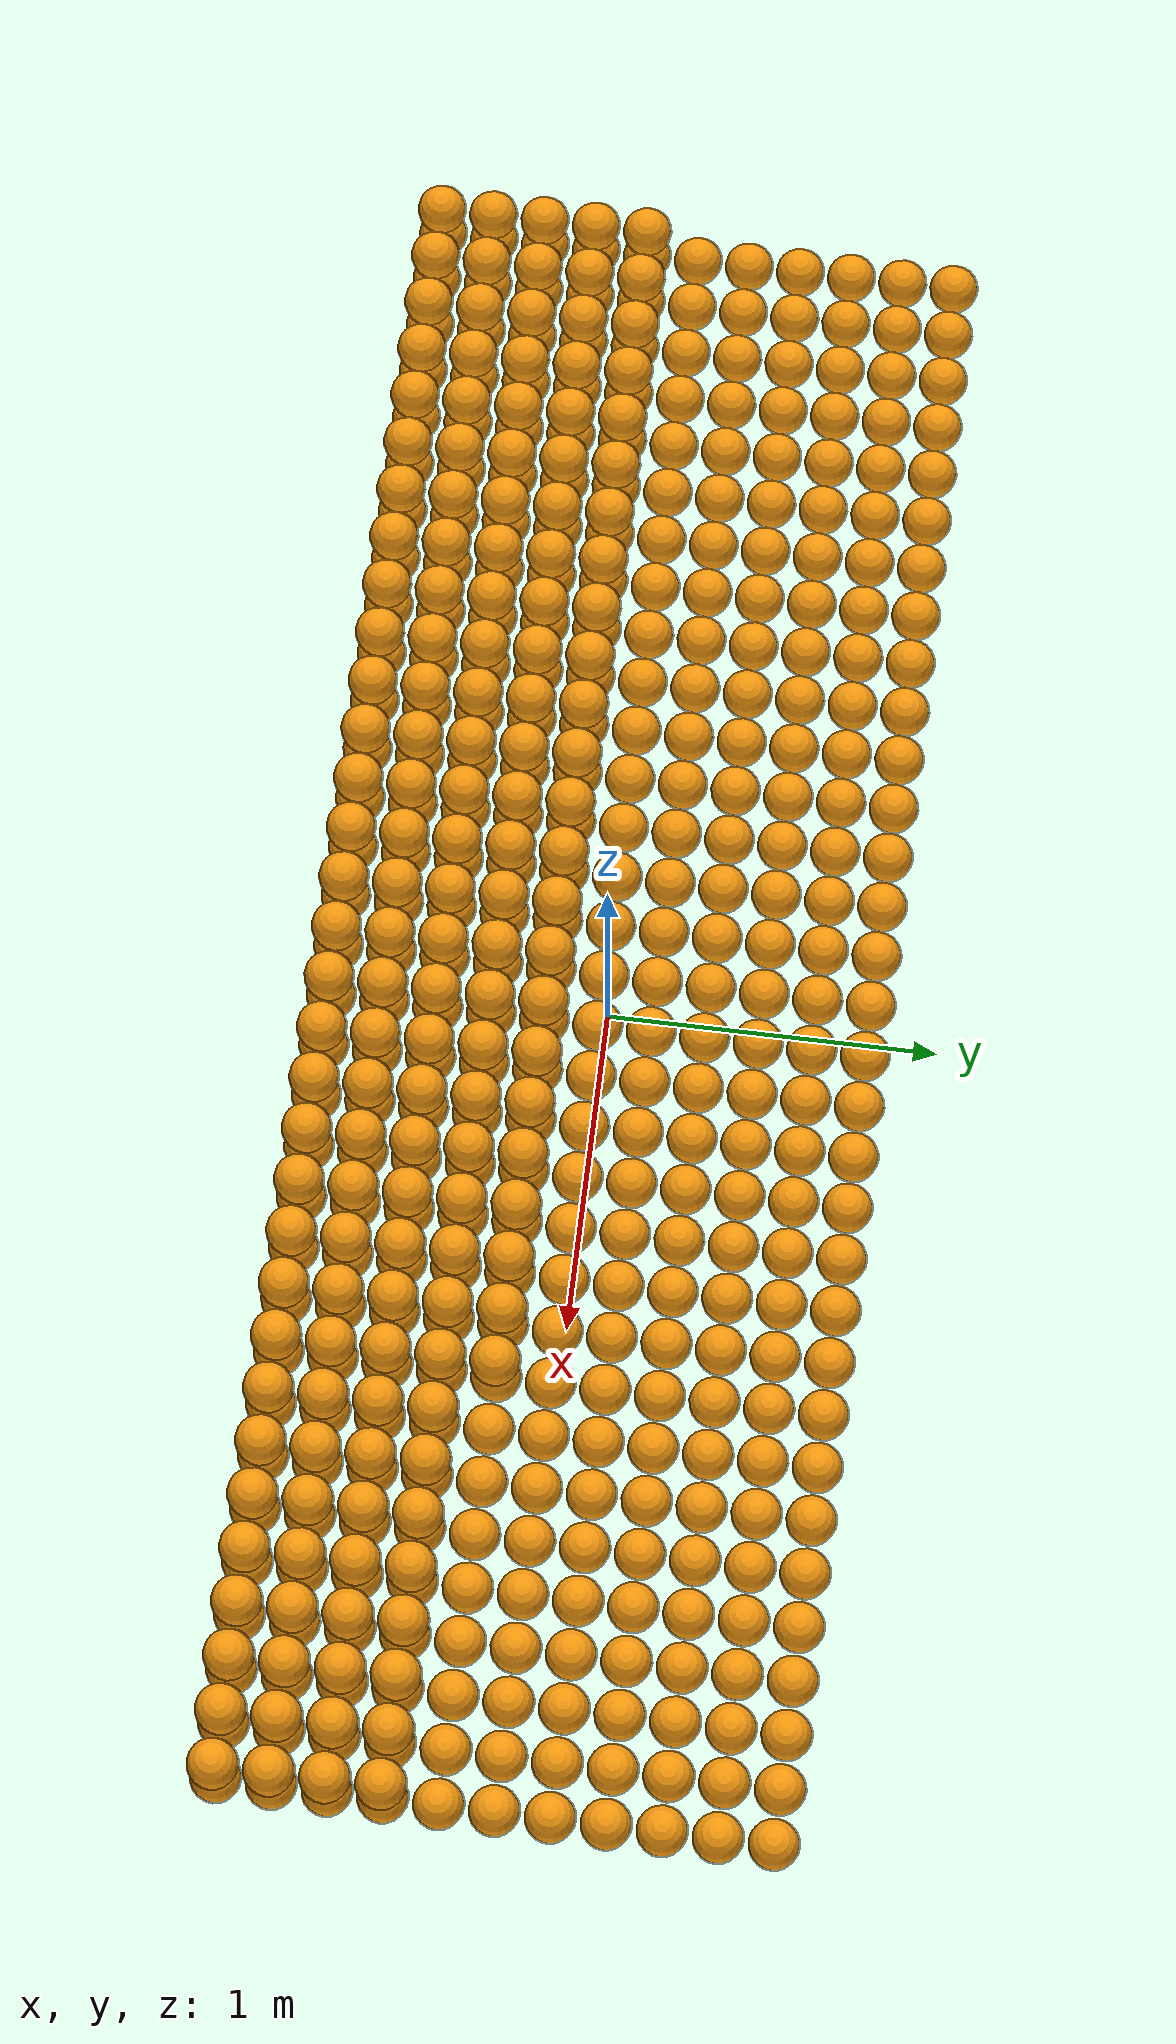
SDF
<?xml version="1.0" ?>
<sdf version="1.11">
  <world name="mars">
    <physics name="250hz" type="ignored">
      <max_step_size>0.004</max_step_size><real_time_factor>0</real_time_factor>
    </physics>
    <plugin filename="gz-sim-physics-system" name="gz::sim::systems::Physics"/>
    <plugin filename="gz-sim-scene-broadcaster-system" name="gz::sim::systems::SceneBroadcaster"/>
    <gravity>0 0 -9.8</gravity>
    <light type="directional" name="sun"><pose>0 0 10 0 0 0</pose>
      <diffuse>0.8 0.8 0.8 1</diffuse><direction>-0.5 0.1 -0.9</direction></light>
    <model name="ground_plane"><static>true</static><link name="link">
      <collision name="collision"><geometry><plane><normal>0 0 1</normal></plane></geometry>
      <surface><friction><ode><mu>0.9</mu><mu2>0.9</mu2></ode></friction></surface></collision>
    </link></model>
    <include><uri>model://fuel</uri><name>fuel_0</name><pose>-2.5340 -0.8340 0.0750 0 0 0</pose></include>
    <include><uri>model://fuel</uri><name>fuel_1</name><pose>-2.3720 -0.8340 0.0750 0 0 0</pose></include>
    <include><uri>model://fuel</uri><name>fuel_2</name><pose>-2.2100 -0.8340 0.0750 0 0 0</pose></include>
    <include><uri>model://fuel</uri><name>fuel_3</name><pose>-2.0480 -0.8340 0.0750 0 0 0</pose></include>
    <include><uri>model://fuel</uri><name>fuel_4</name><pose>-1.8860 -0.8340 0.0750 0 0 0</pose></include>
    <include><uri>model://fuel</uri><name>fuel_5</name><pose>-1.7240 -0.8340 0.0750 0 0 0</pose></include>
    <include><uri>model://fuel</uri><name>fuel_6</name><pose>-1.5620 -0.8340 0.0750 0 0 0</pose></include>
    <include><uri>model://fuel</uri><name>fuel_7</name><pose>-1.4000 -0.8340 0.0750 0 0 0</pose></include>
    <include><uri>model://fuel</uri><name>fuel_8</name><pose>-1.2380 -0.8340 0.0750 0 0 0</pose></include>
    <include><uri>model://fuel</uri><name>fuel_9</name><pose>-1.0760 -0.8340 0.0750 0 0 0</pose></include>
    <include><uri>model://fuel</uri><name>fuel_10</name><pose>-0.9140 -0.8340 0.0750 0 0 0</pose></include>
    <include><uri>model://fuel</uri><name>fuel_11</name><pose>-0.7520 -0.8340 0.0750 0 0 0</pose></include>
    <include><uri>model://fuel</uri><name>fuel_12</name><pose>-0.5900 -0.8340 0.0750 0 0 0</pose></include>
    <include><uri>model://fuel</uri><name>fuel_13</name><pose>-0.4280 -0.8340 0.0750 0 0 0</pose></include>
    <include><uri>model://fuel</uri><name>fuel_14</name><pose>-0.2660 -0.8340 0.0750 0 0 0</pose></include>
    <include><uri>model://fuel</uri><name>fuel_15</name><pose>-0.1040 -0.8340 0.0750 0 0 0</pose></include>
    <include><uri>model://fuel</uri><name>fuel_16</name><pose>0.0580 -0.8340 0.0750 0 0 0</pose></include>
    <include><uri>model://fuel</uri><name>fuel_17</name><pose>0.2200 -0.8340 0.0750 0 0 0</pose></include>
    <include><uri>model://fuel</uri><name>fuel_18</name><pose>0.3820 -0.8340 0.0750 0 0 0</pose></include>
    <include><uri>model://fuel</uri><name>fuel_19</name><pose>0.5440 -0.8340 0.0750 0 0 0</pose></include>
    <include><uri>model://fuel</uri><name>fuel_20</name><pose>0.7060 -0.8340 0.0750 0 0 0</pose></include>
    <include><uri>model://fuel</uri><name>fuel_21</name><pose>0.8680 -0.8340 0.0750 0 0 0</pose></include>
    <include><uri>model://fuel</uri><name>fuel_22</name><pose>1.0300 -0.8340 0.0750 0 0 0</pose></include>
    <include><uri>model://fuel</uri><name>fuel_23</name><pose>1.1920 -0.8340 0.0750 0 0 0</pose></include>
    <include><uri>model://fuel</uri><name>fuel_24</name><pose>1.3540 -0.8340 0.0750 0 0 0</pose></include>
    <include><uri>model://fuel</uri><name>fuel_25</name><pose>1.5160 -0.8340 0.0750 0 0 0</pose></include>
    <include><uri>model://fuel</uri><name>fuel_26</name><pose>1.6780 -0.8340 0.0750 0 0 0</pose></include>
    <include><uri>model://fuel</uri><name>fuel_27</name><pose>1.8400 -0.8340 0.0750 0 0 0</pose></include>
    <include><uri>model://fuel</uri><name>fuel_28</name><pose>2.0020 -0.8340 0.0750 0 0 0</pose></include>
    <include><uri>model://fuel</uri><name>fuel_29</name><pose>2.1640 -0.8340 0.0750 0 0 0</pose></include>
    <include><uri>model://fuel</uri><name>fuel_30</name><pose>2.3260 -0.8340 0.0750 0 0 0</pose></include>
    <include><uri>model://fuel</uri><name>fuel_31</name><pose>2.4880 -0.8340 0.0750 0 0 0</pose></include>
    <include><uri>model://fuel</uri><name>fuel_32</name><pose>-2.5340 -0.6720 0.0750 0 0 0</pose></include>
    <include><uri>model://fuel</uri><name>fuel_33</name><pose>-2.3720 -0.6720 0.0750 0 0 0</pose></include>
    <include><uri>model://fuel</uri><name>fuel_34</name><pose>-2.2100 -0.6720 0.0750 0 0 0</pose></include>
    <include><uri>model://fuel</uri><name>fuel_35</name><pose>-2.0480 -0.6720 0.0750 0 0 0</pose></include>
    <include><uri>model://fuel</uri><name>fuel_36</name><pose>-1.8860 -0.6720 0.0750 0 0 0</pose></include>
    <include><uri>model://fuel</uri><name>fuel_37</name><pose>-1.7240 -0.6720 0.0750 0 0 0</pose></include>
    <include><uri>model://fuel</uri><name>fuel_38</name><pose>-1.5620 -0.6720 0.0750 0 0 0</pose></include>
    <include><uri>model://fuel</uri><name>fuel_39</name><pose>-1.4000 -0.6720 0.0750 0 0 0</pose></include>
    <include><uri>model://fuel</uri><name>fuel_40</name><pose>-1.2380 -0.6720 0.0750 0 0 0</pose></include>
    <include><uri>model://fuel</uri><name>fuel_41</name><pose>-1.0760 -0.6720 0.0750 0 0 0</pose></include>
    <include><uri>model://fuel</uri><name>fuel_42</name><pose>-0.9140 -0.6720 0.0750 0 0 0</pose></include>
    <include><uri>model://fuel</uri><name>fuel_43</name><pose>-0.7520 -0.6720 0.0750 0 0 0</pose></include>
    <include><uri>model://fuel</uri><name>fuel_44</name><pose>-0.5900 -0.6720 0.0750 0 0 0</pose></include>
    <include><uri>model://fuel</uri><name>fuel_45</name><pose>-0.4280 -0.6720 0.0750 0 0 0</pose></include>
    <include><uri>model://fuel</uri><name>fuel_46</name><pose>-0.2660 -0.6720 0.0750 0 0 0</pose></include>
    <include><uri>model://fuel</uri><name>fuel_47</name><pose>-0.1040 -0.6720 0.0750 0 0 0</pose></include>
    <include><uri>model://fuel</uri><name>fuel_48</name><pose>0.0580 -0.6720 0.0750 0 0 0</pose></include>
    <include><uri>model://fuel</uri><name>fuel_49</name><pose>0.2200 -0.6720 0.0750 0 0 0</pose></include>
    <include><uri>model://fuel</uri><name>fuel_50</name><pose>0.3820 -0.6720 0.0750 0 0 0</pose></include>
    <include><uri>model://fuel</uri><name>fuel_51</name><pose>0.5440 -0.6720 0.0750 0 0 0</pose></include>
    <include><uri>model://fuel</uri><name>fuel_52</name><pose>0.7060 -0.6720 0.0750 0 0 0</pose></include>
    <include><uri>model://fuel</uri><name>fuel_53</name><pose>0.8680 -0.6720 0.0750 0 0 0</pose></include>
    <include><uri>model://fuel</uri><name>fuel_54</name><pose>1.0300 -0.6720 0.0750 0 0 0</pose></include>
    <include><uri>model://fuel</uri><name>fuel_55</name><pose>1.1920 -0.6720 0.0750 0 0 0</pose></include>
    <include><uri>model://fuel</uri><name>fuel_56</name><pose>1.3540 -0.6720 0.0750 0 0 0</pose></include>
    <include><uri>model://fuel</uri><name>fuel_57</name><pose>1.5160 -0.6720 0.0750 0 0 0</pose></include>
    <include><uri>model://fuel</uri><name>fuel_58</name><pose>1.6780 -0.6720 0.0750 0 0 0</pose></include>
    <include><uri>model://fuel</uri><name>fuel_59</name><pose>1.8400 -0.6720 0.0750 0 0 0</pose></include>
    <include><uri>model://fuel</uri><name>fuel_60</name><pose>2.0020 -0.6720 0.0750 0 0 0</pose></include>
    <include><uri>model://fuel</uri><name>fuel_61</name><pose>2.1640 -0.6720 0.0750 0 0 0</pose></include>
    <include><uri>model://fuel</uri><name>fuel_62</name><pose>2.3260 -0.6720 0.0750 0 0 0</pose></include>
    <include><uri>model://fuel</uri><name>fuel_63</name><pose>2.4880 -0.6720 0.0750 0 0 0</pose></include>
    <include><uri>model://fuel</uri><name>fuel_64</name><pose>-2.5340 -0.5100 0.0750 0 0 0</pose></include>
    <include><uri>model://fuel</uri><name>fuel_65</name><pose>-2.3720 -0.5100 0.0750 0 0 0</pose></include>
    <include><uri>model://fuel</uri><name>fuel_66</name><pose>-2.2100 -0.5100 0.0750 0 0 0</pose></include>
    <include><uri>model://fuel</uri><name>fuel_67</name><pose>-2.0480 -0.5100 0.0750 0 0 0</pose></include>
    <include><uri>model://fuel</uri><name>fuel_68</name><pose>-1.8860 -0.5100 0.0750 0 0 0</pose></include>
    <include><uri>model://fuel</uri><name>fuel_69</name><pose>-1.7240 -0.5100 0.0750 0 0 0</pose></include>
    <include><uri>model://fuel</uri><name>fuel_70</name><pose>-1.5620 -0.5100 0.0750 0 0 0</pose></include>
    <include><uri>model://fuel</uri><name>fuel_71</name><pose>-1.4000 -0.5100 0.0750 0 0 0</pose></include>
    <include><uri>model://fuel</uri><name>fuel_72</name><pose>-1.2380 -0.5100 0.0750 0 0 0</pose></include>
    <include><uri>model://fuel</uri><name>fuel_73</name><pose>-1.0760 -0.5100 0.0750 0 0 0</pose></include>
    <include><uri>model://fuel</uri><name>fuel_74</name><pose>-0.9140 -0.5100 0.0750 0 0 0</pose></include>
    <include><uri>model://fuel</uri><name>fuel_75</name><pose>-0.7520 -0.5100 0.0750 0 0 0</pose></include>
    <include><uri>model://fuel</uri><name>fuel_76</name><pose>-0.5900 -0.5100 0.0750 0 0 0</pose></include>
    <include><uri>model://fuel</uri><name>fuel_77</name><pose>-0.4280 -0.5100 0.0750 0 0 0</pose></include>
    <include><uri>model://fuel</uri><name>fuel_78</name><pose>-0.2660 -0.5100 0.0750 0 0 0</pose></include>
    <include><uri>model://fuel</uri><name>fuel_79</name><pose>-0.1040 -0.5100 0.0750 0 0 0</pose></include>
    <include><uri>model://fuel</uri><name>fuel_80</name><pose>0.0580 -0.5100 0.0750 0 0 0</pose></include>
    <include><uri>model://fuel</uri><name>fuel_81</name><pose>0.2200 -0.5100 0.0750 0 0 0</pose></include>
    <include><uri>model://fuel</uri><name>fuel_82</name><pose>0.3820 -0.5100 0.0750 0 0 0</pose></include>
    <include><uri>model://fuel</uri><name>fuel_83</name><pose>0.5440 -0.5100 0.0750 0 0 0</pose></include>
    <include><uri>model://fuel</uri><name>fuel_84</name><pose>0.7060 -0.5100 0.0750 0 0 0</pose></include>
    <include><uri>model://fuel</uri><name>fuel_85</name><pose>0.8680 -0.5100 0.0750 0 0 0</pose></include>
    <include><uri>model://fuel</uri><name>fuel_86</name><pose>1.0300 -0.5100 0.0750 0 0 0</pose></include>
    <include><uri>model://fuel</uri><name>fuel_87</name><pose>1.1920 -0.5100 0.0750 0 0 0</pose></include>
    <include><uri>model://fuel</uri><name>fuel_88</name><pose>1.3540 -0.5100 0.0750 0 0 0</pose></include>
    <include><uri>model://fuel</uri><name>fuel_89</name><pose>1.5160 -0.5100 0.0750 0 0 0</pose></include>
    <include><uri>model://fuel</uri><name>fuel_90</name><pose>1.6780 -0.5100 0.0750 0 0 0</pose></include>
    <include><uri>model://fuel</uri><name>fuel_91</name><pose>1.8400 -0.5100 0.0750 0 0 0</pose></include>
    <include><uri>model://fuel</uri><name>fuel_92</name><pose>2.0020 -0.5100 0.0750 0 0 0</pose></include>
    <include><uri>model://fuel</uri><name>fuel_93</name><pose>2.1640 -0.5100 0.0750 0 0 0</pose></include>
    <include><uri>model://fuel</uri><name>fuel_94</name><pose>2.3260 -0.5100 0.0750 0 0 0</pose></include>
    <include><uri>model://fuel</uri><name>fuel_95</name><pose>2.4880 -0.5100 0.0750 0 0 0</pose></include>
    <include><uri>model://fuel</uri><name>fuel_96</name><pose>-2.5340 -0.3480 0.0750 0 0 0</pose></include>
    <include><uri>model://fuel</uri><name>fuel_97</name><pose>-2.3720 -0.3480 0.0750 0 0 0</pose></include>
    <include><uri>model://fuel</uri><name>fuel_98</name><pose>-2.2100 -0.3480 0.0750 0 0 0</pose></include>
    <include><uri>model://fuel</uri><name>fuel_99</name><pose>-2.0480 -0.3480 0.0750 0 0 0</pose></include>
    <include><uri>model://fuel</uri><name>fuel_100</name><pose>-1.8860 -0.3480 0.0750 0 0 0</pose></include>
    <include><uri>model://fuel</uri><name>fuel_101</name><pose>-1.7240 -0.3480 0.0750 0 0 0</pose></include>
    <include><uri>model://fuel</uri><name>fuel_102</name><pose>-1.5620 -0.3480 0.0750 0 0 0</pose></include>
    <include><uri>model://fuel</uri><name>fuel_103</name><pose>-1.4000 -0.3480 0.0750 0 0 0</pose></include>
    <include><uri>model://fuel</uri><name>fuel_104</name><pose>-1.2380 -0.3480 0.0750 0 0 0</pose></include>
    <include><uri>model://fuel</uri><name>fuel_105</name><pose>-1.0760 -0.3480 0.0750 0 0 0</pose></include>
    <include><uri>model://fuel</uri><name>fuel_106</name><pose>-0.9140 -0.3480 0.0750 0 0 0</pose></include>
    <include><uri>model://fuel</uri><name>fuel_107</name><pose>-0.7520 -0.3480 0.0750 0 0 0</pose></include>
    <include><uri>model://fuel</uri><name>fuel_108</name><pose>-0.5900 -0.3480 0.0750 0 0 0</pose></include>
    <include><uri>model://fuel</uri><name>fuel_109</name><pose>-0.4280 -0.3480 0.0750 0 0 0</pose></include>
    <include><uri>model://fuel</uri><name>fuel_110</name><pose>-0.2660 -0.3480 0.0750 0 0 0</pose></include>
    <include><uri>model://fuel</uri><name>fuel_111</name><pose>-0.1040 -0.3480 0.0750 0 0 0</pose></include>
    <include><uri>model://fuel</uri><name>fuel_112</name><pose>0.0580 -0.3480 0.0750 0 0 0</pose></include>
    <include><uri>model://fuel</uri><name>fuel_113</name><pose>0.2200 -0.3480 0.0750 0 0 0</pose></include>
    <include><uri>model://fuel</uri><name>fuel_114</name><pose>0.3820 -0.3480 0.0750 0 0 0</pose></include>
    <include><uri>model://fuel</uri><name>fuel_115</name><pose>0.5440 -0.3480 0.0750 0 0 0</pose></include>
    <include><uri>model://fuel</uri><name>fuel_116</name><pose>0.7060 -0.3480 0.0750 0 0 0</pose></include>
    <include><uri>model://fuel</uri><name>fuel_117</name><pose>0.8680 -0.3480 0.0750 0 0 0</pose></include>
    <include><uri>model://fuel</uri><name>fuel_118</name><pose>1.0300 -0.3480 0.0750 0 0 0</pose></include>
    <include><uri>model://fuel</uri><name>fuel_119</name><pose>1.1920 -0.3480 0.0750 0 0 0</pose></include>
    <include><uri>model://fuel</uri><name>fuel_120</name><pose>1.3540 -0.3480 0.0750 0 0 0</pose></include>
    <include><uri>model://fuel</uri><name>fuel_121</name><pose>1.5160 -0.3480 0.0750 0 0 0</pose></include>
    <include><uri>model://fuel</uri><name>fuel_122</name><pose>1.6780 -0.3480 0.0750 0 0 0</pose></include>
    <include><uri>model://fuel</uri><name>fuel_123</name><pose>1.8400 -0.3480 0.0750 0 0 0</pose></include>
    <include><uri>model://fuel</uri><name>fuel_124</name><pose>2.0020 -0.3480 0.0750 0 0 0</pose></include>
    <include><uri>model://fuel</uri><name>fuel_125</name><pose>2.1640 -0.3480 0.0750 0 0 0</pose></include>
    <include><uri>model://fuel</uri><name>fuel_126</name><pose>2.3260 -0.3480 0.0750 0 0 0</pose></include>
    <include><uri>model://fuel</uri><name>fuel_127</name><pose>2.4880 -0.3480 0.0750 0 0 0</pose></include>
    <include><uri>model://fuel</uri><name>fuel_128</name><pose>-2.5340 -0.1860 0.0750 0 0 0</pose></include>
    <include><uri>model://fuel</uri><name>fuel_129</name><pose>-2.3720 -0.1860 0.0750 0 0 0</pose></include>
    <include><uri>model://fuel</uri><name>fuel_130</name><pose>-2.2100 -0.1860 0.0750 0 0 0</pose></include>
    <include><uri>model://fuel</uri><name>fuel_131</name><pose>-2.0480 -0.1860 0.0750 0 0 0</pose></include>
    <include><uri>model://fuel</uri><name>fuel_132</name><pose>-1.8860 -0.1860 0.0750 0 0 0</pose></include>
    <include><uri>model://fuel</uri><name>fuel_133</name><pose>-1.7240 -0.1860 0.0750 0 0 0</pose></include>
    <include><uri>model://fuel</uri><name>fuel_134</name><pose>-1.5620 -0.1860 0.0750 0 0 0</pose></include>
    <include><uri>model://fuel</uri><name>fuel_135</name><pose>-1.4000 -0.1860 0.0750 0 0 0</pose></include>
    <include><uri>model://fuel</uri><name>fuel_136</name><pose>-1.2380 -0.1860 0.0750 0 0 0</pose></include>
    <include><uri>model://fuel</uri><name>fuel_137</name><pose>-1.0760 -0.1860 0.0750 0 0 0</pose></include>
    <include><uri>model://fuel</uri><name>fuel_138</name><pose>-0.9140 -0.1860 0.0750 0 0 0</pose></include>
    <include><uri>model://fuel</uri><name>fuel_139</name><pose>-0.7520 -0.1860 0.0750 0 0 0</pose></include>
    <include><uri>model://fuel</uri><name>fuel_140</name><pose>-0.5900 -0.1860 0.0750 0 0 0</pose></include>
    <include><uri>model://fuel</uri><name>fuel_141</name><pose>-0.4280 -0.1860 0.0750 0 0 0</pose></include>
    <include><uri>model://fuel</uri><name>fuel_142</name><pose>-0.2660 -0.1860 0.0750 0 0 0</pose></include>
    <include><uri>model://fuel</uri><name>fuel_143</name><pose>-0.1040 -0.1860 0.0750 0 0 0</pose></include>
    <include><uri>model://fuel</uri><name>fuel_144</name><pose>0.0580 -0.1860 0.0750 0 0 0</pose></include>
    <include><uri>model://fuel</uri><name>fuel_145</name><pose>0.2200 -0.1860 0.0750 0 0 0</pose></include>
    <include><uri>model://fuel</uri><name>fuel_146</name><pose>0.3820 -0.1860 0.0750 0 0 0</pose></include>
    <include><uri>model://fuel</uri><name>fuel_147</name><pose>0.5440 -0.1860 0.0750 0 0 0</pose></include>
    <include><uri>model://fuel</uri><name>fuel_148</name><pose>0.7060 -0.1860 0.0750 0 0 0</pose></include>
    <include><uri>model://fuel</uri><name>fuel_149</name><pose>0.8680 -0.1860 0.0750 0 0 0</pose></include>
    <include><uri>model://fuel</uri><name>fuel_150</name><pose>1.0300 -0.1860 0.0750 0 0 0</pose></include>
    <include><uri>model://fuel</uri><name>fuel_151</name><pose>1.1920 -0.1860 0.0750 0 0 0</pose></include>
    <include><uri>model://fuel</uri><name>fuel_152</name><pose>1.3540 -0.1860 0.0750 0 0 0</pose></include>
    <include><uri>model://fuel</uri><name>fuel_153</name><pose>1.5160 -0.1860 0.0750 0 0 0</pose></include>
    <include><uri>model://fuel</uri><name>fuel_154</name><pose>1.6780 -0.1860 0.0750 0 0 0</pose></include>
    <include><uri>model://fuel</uri><name>fuel_155</name><pose>1.8400 -0.1860 0.0750 0 0 0</pose></include>
    <include><uri>model://fuel</uri><name>fuel_156</name><pose>2.0020 -0.1860 0.0750 0 0 0</pose></include>
    <include><uri>model://fuel</uri><name>fuel_157</name><pose>2.1640 -0.1860 0.0750 0 0 0</pose></include>
    <include><uri>model://fuel</uri><name>fuel_158</name><pose>2.3260 -0.1860 0.0750 0 0 0</pose></include>
    <include><uri>model://fuel</uri><name>fuel_159</name><pose>2.4880 -0.1860 0.0750 0 0 0</pose></include>
    <include><uri>model://fuel</uri><name>fuel_160</name><pose>-2.5340 -0.0240 0.0750 0 0 0</pose></include>
    <include><uri>model://fuel</uri><name>fuel_161</name><pose>-2.3720 -0.0240 0.0750 0 0 0</pose></include>
    <include><uri>model://fuel</uri><name>fuel_162</name><pose>-2.2100 -0.0240 0.0750 0 0 0</pose></include>
    <include><uri>model://fuel</uri><name>fuel_163</name><pose>-2.0480 -0.0240 0.0750 0 0 0</pose></include>
    <include><uri>model://fuel</uri><name>fuel_164</name><pose>-1.8860 -0.0240 0.0750 0 0 0</pose></include>
    <include><uri>model://fuel</uri><name>fuel_165</name><pose>-1.7240 -0.0240 0.0750 0 0 0</pose></include>
    <include><uri>model://fuel</uri><name>fuel_166</name><pose>-1.5620 -0.0240 0.0750 0 0 0</pose></include>
    <include><uri>model://fuel</uri><name>fuel_167</name><pose>-1.4000 -0.0240 0.0750 0 0 0</pose></include>
    <include><uri>model://fuel</uri><name>fuel_168</name><pose>-1.2380 -0.0240 0.0750 0 0 0</pose></include>
    <include><uri>model://fuel</uri><name>fuel_169</name><pose>-1.0760 -0.0240 0.0750 0 0 0</pose></include>
    <include><uri>model://fuel</uri><name>fuel_170</name><pose>-0.9140 -0.0240 0.0750 0 0 0</pose></include>
    <include><uri>model://fuel</uri><name>fuel_171</name><pose>-0.7520 -0.0240 0.0750 0 0 0</pose></include>
    <include><uri>model://fuel</uri><name>fuel_172</name><pose>-0.5900 -0.0240 0.0750 0 0 0</pose></include>
    <include><uri>model://fuel</uri><name>fuel_173</name><pose>-0.4280 -0.0240 0.0750 0 0 0</pose></include>
    <include><uri>model://fuel</uri><name>fuel_174</name><pose>-0.2660 -0.0240 0.0750 0 0 0</pose></include>
    <include><uri>model://fuel</uri><name>fuel_175</name><pose>-0.1040 -0.0240 0.0750 0 0 0</pose></include>
    <include><uri>model://fuel</uri><name>fuel_176</name><pose>0.0580 -0.0240 0.0750 0 0 0</pose></include>
    <include><uri>model://fuel</uri><name>fuel_177</name><pose>0.2200 -0.0240 0.0750 0 0 0</pose></include>
    <include><uri>model://fuel</uri><name>fuel_178</name><pose>0.3820 -0.0240 0.0750 0 0 0</pose></include>
    <include><uri>model://fuel</uri><name>fuel_179</name><pose>0.5440 -0.0240 0.0750 0 0 0</pose></include>
    <include><uri>model://fuel</uri><name>fuel_180</name><pose>0.7060 -0.0240 0.0750 0 0 0</pose></include>
    <include><uri>model://fuel</uri><name>fuel_181</name><pose>0.8680 -0.0240 0.0750 0 0 0</pose></include>
    <include><uri>model://fuel</uri><name>fuel_182</name><pose>1.0300 -0.0240 0.0750 0 0 0</pose></include>
    <include><uri>model://fuel</uri><name>fuel_183</name><pose>1.1920 -0.0240 0.0750 0 0 0</pose></include>
    <include><uri>model://fuel</uri><name>fuel_184</name><pose>1.3540 -0.0240 0.0750 0 0 0</pose></include>
    <include><uri>model://fuel</uri><name>fuel_185</name><pose>1.5160 -0.0240 0.0750 0 0 0</pose></include>
    <include><uri>model://fuel</uri><name>fuel_186</name><pose>1.6780 -0.0240 0.0750 0 0 0</pose></include>
    <include><uri>model://fuel</uri><name>fuel_187</name><pose>1.8400 -0.0240 0.0750 0 0 0</pose></include>
    <include><uri>model://fuel</uri><name>fuel_188</name><pose>2.0020 -0.0240 0.0750 0 0 0</pose></include>
    <include><uri>model://fuel</uri><name>fuel_189</name><pose>2.1640 -0.0240 0.0750 0 0 0</pose></include>
    <include><uri>model://fuel</uri><name>fuel_190</name><pose>2.3260 -0.0240 0.0750 0 0 0</pose></include>
    <include><uri>model://fuel</uri><name>fuel_191</name><pose>2.4880 -0.0240 0.0750 0 0 0</pose></include>
    <include><uri>model://fuel</uri><name>fuel_192</name><pose>-2.5340 0.1380 0.0750 0 0 0</pose></include>
    <include><uri>model://fuel</uri><name>fuel_193</name><pose>-2.3720 0.1380 0.0750 0 0 0</pose></include>
    <include><uri>model://fuel</uri><name>fuel_194</name><pose>-2.2100 0.1380 0.0750 0 0 0</pose></include>
    <include><uri>model://fuel</uri><name>fuel_195</name><pose>-2.0480 0.1380 0.0750 0 0 0</pose></include>
    <include><uri>model://fuel</uri><name>fuel_196</name><pose>-1.8860 0.1380 0.0750 0 0 0</pose></include>
    <include><uri>model://fuel</uri><name>fuel_197</name><pose>-1.7240 0.1380 0.0750 0 0 0</pose></include>
    <include><uri>model://fuel</uri><name>fuel_198</name><pose>-1.5620 0.1380 0.0750 0 0 0</pose></include>
    <include><uri>model://fuel</uri><name>fuel_199</name><pose>-1.4000 0.1380 0.0750 0 0 0</pose></include>
    <include><uri>model://fuel</uri><name>fuel_200</name><pose>-1.2380 0.1380 0.0750 0 0 0</pose></include>
    <include><uri>model://fuel</uri><name>fuel_201</name><pose>-1.0760 0.1380 0.0750 0 0 0</pose></include>
    <include><uri>model://fuel</uri><name>fuel_202</name><pose>-0.9140 0.1380 0.0750 0 0 0</pose></include>
    <include><uri>model://fuel</uri><name>fuel_203</name><pose>-0.7520 0.1380 0.0750 0 0 0</pose></include>
    <include><uri>model://fuel</uri><name>fuel_204</name><pose>-0.5900 0.1380 0.0750 0 0 0</pose></include>
    <include><uri>model://fuel</uri><name>fuel_205</name><pose>-0.4280 0.1380 0.0750 0 0 0</pose></include>
    <include><uri>model://fuel</uri><name>fuel_206</name><pose>-0.2660 0.1380 0.0750 0 0 0</pose></include>
    <include><uri>model://fuel</uri><name>fuel_207</name><pose>-0.1040 0.1380 0.0750 0 0 0</pose></include>
    <include><uri>model://fuel</uri><name>fuel_208</name><pose>0.0580 0.1380 0.0750 0 0 0</pose></include>
    <include><uri>model://fuel</uri><name>fuel_209</name><pose>0.2200 0.1380 0.0750 0 0 0</pose></include>
    <include><uri>model://fuel</uri><name>fuel_210</name><pose>0.3820 0.1380 0.0750 0 0 0</pose></include>
    <include><uri>model://fuel</uri><name>fuel_211</name><pose>0.5440 0.1380 0.0750 0 0 0</pose></include>
    <include><uri>model://fuel</uri><name>fuel_212</name><pose>0.7060 0.1380 0.0750 0 0 0</pose></include>
    <include><uri>model://fuel</uri><name>fuel_213</name><pose>0.8680 0.1380 0.0750 0 0 0</pose></include>
    <include><uri>model://fuel</uri><name>fuel_214</name><pose>1.0300 0.1380 0.0750 0 0 0</pose></include>
    <include><uri>model://fuel</uri><name>fuel_215</name><pose>1.1920 0.1380 0.0750 0 0 0</pose></include>
    <include><uri>model://fuel</uri><name>fuel_216</name><pose>1.3540 0.1380 0.0750 0 0 0</pose></include>
    <include><uri>model://fuel</uri><name>fuel_217</name><pose>1.5160 0.1380 0.0750 0 0 0</pose></include>
    <include><uri>model://fuel</uri><name>fuel_218</name><pose>1.6780 0.1380 0.0750 0 0 0</pose></include>
    <include><uri>model://fuel</uri><name>fuel_219</name><pose>1.8400 0.1380 0.0750 0 0 0</pose></include>
    <include><uri>model://fuel</uri><name>fuel_220</name><pose>2.0020 0.1380 0.0750 0 0 0</pose></include>
    <include><uri>model://fuel</uri><name>fuel_221</name><pose>2.1640 0.1380 0.0750 0 0 0</pose></include>
    <include><uri>model://fuel</uri><name>fuel_222</name><pose>2.3260 0.1380 0.0750 0 0 0</pose></include>
    <include><uri>model://fuel</uri><name>fuel_223</name><pose>2.4880 0.1380 0.0750 0 0 0</pose></include>
    <include><uri>model://fuel</uri><name>fuel_224</name><pose>-2.5340 0.3000 0.0750 0 0 0</pose></include>
    <include><uri>model://fuel</uri><name>fuel_225</name><pose>-2.3720 0.3000 0.0750 0 0 0</pose></include>
    <include><uri>model://fuel</uri><name>fuel_226</name><pose>-2.2100 0.3000 0.0750 0 0 0</pose></include>
    <include><uri>model://fuel</uri><name>fuel_227</name><pose>-2.0480 0.3000 0.0750 0 0 0</pose></include>
    <include><uri>model://fuel</uri><name>fuel_228</name><pose>-1.8860 0.3000 0.0750 0 0 0</pose></include>
    <include><uri>model://fuel</uri><name>fuel_229</name><pose>-1.7240 0.3000 0.0750 0 0 0</pose></include>
    <include><uri>model://fuel</uri><name>fuel_230</name><pose>-1.5620 0.3000 0.0750 0 0 0</pose></include>
    <include><uri>model://fuel</uri><name>fuel_231</name><pose>-1.4000 0.3000 0.0750 0 0 0</pose></include>
    <include><uri>model://fuel</uri><name>fuel_232</name><pose>-1.2380 0.3000 0.0750 0 0 0</pose></include>
    <include><uri>model://fuel</uri><name>fuel_233</name><pose>-1.0760 0.3000 0.0750 0 0 0</pose></include>
    <include><uri>model://fuel</uri><name>fuel_234</name><pose>-0.9140 0.3000 0.0750 0 0 0</pose></include>
    <include><uri>model://fuel</uri><name>fuel_235</name><pose>-0.7520 0.3000 0.0750 0 0 0</pose></include>
    <include><uri>model://fuel</uri><name>fuel_236</name><pose>-0.5900 0.3000 0.0750 0 0 0</pose></include>
    <include><uri>model://fuel</uri><name>fuel_237</name><pose>-0.4280 0.3000 0.0750 0 0 0</pose></include>
    <include><uri>model://fuel</uri><name>fuel_238</name><pose>-0.2660 0.3000 0.0750 0 0 0</pose></include>
    <include><uri>model://fuel</uri><name>fuel_239</name><pose>-0.1040 0.3000 0.0750 0 0 0</pose></include>
    <include><uri>model://fuel</uri><name>fuel_240</name><pose>0.0580 0.3000 0.0750 0 0 0</pose></include>
    <include><uri>model://fuel</uri><name>fuel_241</name><pose>0.2200 0.3000 0.0750 0 0 0</pose></include>
    <include><uri>model://fuel</uri><name>fuel_242</name><pose>0.3820 0.3000 0.0750 0 0 0</pose></include>
    <include><uri>model://fuel</uri><name>fuel_243</name><pose>0.5440 0.3000 0.0750 0 0 0</pose></include>
    <include><uri>model://fuel</uri><name>fuel_244</name><pose>0.7060 0.3000 0.0750 0 0 0</pose></include>
    <include><uri>model://fuel</uri><name>fuel_245</name><pose>0.8680 0.3000 0.0750 0 0 0</pose></include>
    <include><uri>model://fuel</uri><name>fuel_246</name><pose>1.0300 0.3000 0.0750 0 0 0</pose></include>
    <include><uri>model://fuel</uri><name>fuel_247</name><pose>1.1920 0.3000 0.0750 0 0 0</pose></include>
    <include><uri>model://fuel</uri><name>fuel_248</name><pose>1.3540 0.3000 0.0750 0 0 0</pose></include>
    <include><uri>model://fuel</uri><name>fuel_249</name><pose>1.5160 0.3000 0.0750 0 0 0</pose></include>
    <include><uri>model://fuel</uri><name>fuel_250</name><pose>1.6780 0.3000 0.0750 0 0 0</pose></include>
    <include><uri>model://fuel</uri><name>fuel_251</name><pose>1.8400 0.3000 0.0750 0 0 0</pose></include>
    <include><uri>model://fuel</uri><name>fuel_252</name><pose>2.0020 0.3000 0.0750 0 0 0</pose></include>
    <include><uri>model://fuel</uri><name>fuel_253</name><pose>2.1640 0.3000 0.0750 0 0 0</pose></include>
    <include><uri>model://fuel</uri><name>fuel_254</name><pose>2.3260 0.3000 0.0750 0 0 0</pose></include>
    <include><uri>model://fuel</uri><name>fuel_255</name><pose>2.4880 0.3000 0.0750 0 0 0</pose></include>
    <include><uri>model://fuel</uri><name>fuel_256</name><pose>-2.5340 0.4620 0.0750 0 0 0</pose></include>
    <include><uri>model://fuel</uri><name>fuel_257</name><pose>-2.3720 0.4620 0.0750 0 0 0</pose></include>
    <include><uri>model://fuel</uri><name>fuel_258</name><pose>-2.2100 0.4620 0.0750 0 0 0</pose></include>
    <include><uri>model://fuel</uri><name>fuel_259</name><pose>-2.0480 0.4620 0.0750 0 0 0</pose></include>
    <include><uri>model://fuel</uri><name>fuel_260</name><pose>-1.8860 0.4620 0.0750 0 0 0</pose></include>
    <include><uri>model://fuel</uri><name>fuel_261</name><pose>-1.7240 0.4620 0.0750 0 0 0</pose></include>
    <include><uri>model://fuel</uri><name>fuel_262</name><pose>-1.5620 0.4620 0.0750 0 0 0</pose></include>
    <include><uri>model://fuel</uri><name>fuel_263</name><pose>-1.4000 0.4620 0.0750 0 0 0</pose></include>
    <include><uri>model://fuel</uri><name>fuel_264</name><pose>-1.2380 0.4620 0.0750 0 0 0</pose></include>
    <include><uri>model://fuel</uri><name>fuel_265</name><pose>-1.0760 0.4620 0.0750 0 0 0</pose></include>
    <include><uri>model://fuel</uri><name>fuel_266</name><pose>-0.9140 0.4620 0.0750 0 0 0</pose></include>
    <include><uri>model://fuel</uri><name>fuel_267</name><pose>-0.7520 0.4620 0.0750 0 0 0</pose></include>
    <include><uri>model://fuel</uri><name>fuel_268</name><pose>-0.5900 0.4620 0.0750 0 0 0</pose></include>
    <include><uri>model://fuel</uri><name>fuel_269</name><pose>-0.4280 0.4620 0.0750 0 0 0</pose></include>
    <include><uri>model://fuel</uri><name>fuel_270</name><pose>-0.2660 0.4620 0.0750 0 0 0</pose></include>
    <include><uri>model://fuel</uri><name>fuel_271</name><pose>-0.1040 0.4620 0.0750 0 0 0</pose></include>
    <include><uri>model://fuel</uri><name>fuel_272</name><pose>0.0580 0.4620 0.0750 0 0 0</pose></include>
    <include><uri>model://fuel</uri><name>fuel_273</name><pose>0.2200 0.4620 0.0750 0 0 0</pose></include>
    <include><uri>model://fuel</uri><name>fuel_274</name><pose>0.3820 0.4620 0.0750 0 0 0</pose></include>
    <include><uri>model://fuel</uri><name>fuel_275</name><pose>0.5440 0.4620 0.0750 0 0 0</pose></include>
    <include><uri>model://fuel</uri><name>fuel_276</name><pose>0.7060 0.4620 0.0750 0 0 0</pose></include>
    <include><uri>model://fuel</uri><name>fuel_277</name><pose>0.8680 0.4620 0.0750 0 0 0</pose></include>
    <include><uri>model://fuel</uri><name>fuel_278</name><pose>1.0300 0.4620 0.0750 0 0 0</pose></include>
    <include><uri>model://fuel</uri><name>fuel_279</name><pose>1.1920 0.4620 0.0750 0 0 0</pose></include>
    <include><uri>model://fuel</uri><name>fuel_280</name><pose>1.3540 0.4620 0.0750 0 0 0</pose></include>
    <include><uri>model://fuel</uri><name>fuel_281</name><pose>1.5160 0.4620 0.0750 0 0 0</pose></include>
    <include><uri>model://fuel</uri><name>fuel_282</name><pose>1.6780 0.4620 0.0750 0 0 0</pose></include>
    <include><uri>model://fuel</uri><name>fuel_283</name><pose>1.8400 0.4620 0.0750 0 0 0</pose></include>
    <include><uri>model://fuel</uri><name>fuel_284</name><pose>2.0020 0.4620 0.0750 0 0 0</pose></include>
    <include><uri>model://fuel</uri><name>fuel_285</name><pose>2.1640 0.4620 0.0750 0 0 0</pose></include>
    <include><uri>model://fuel</uri><name>fuel_286</name><pose>2.3260 0.4620 0.0750 0 0 0</pose></include>
    <include><uri>model://fuel</uri><name>fuel_287</name><pose>2.4880 0.4620 0.0750 0 0 0</pose></include>
    <include><uri>model://fuel</uri><name>fuel_288</name><pose>-2.5340 0.6240 0.0750 0 0 0</pose></include>
    <include><uri>model://fuel</uri><name>fuel_289</name><pose>-2.3720 0.6240 0.0750 0 0 0</pose></include>
    <include><uri>model://fuel</uri><name>fuel_290</name><pose>-2.2100 0.6240 0.0750 0 0 0</pose></include>
    <include><uri>model://fuel</uri><name>fuel_291</name><pose>-2.0480 0.6240 0.0750 0 0 0</pose></include>
    <include><uri>model://fuel</uri><name>fuel_292</name><pose>-1.8860 0.6240 0.0750 0 0 0</pose></include>
    <include><uri>model://fuel</uri><name>fuel_293</name><pose>-1.7240 0.6240 0.0750 0 0 0</pose></include>
    <include><uri>model://fuel</uri><name>fuel_294</name><pose>-1.5620 0.6240 0.0750 0 0 0</pose></include>
    <include><uri>model://fuel</uri><name>fuel_295</name><pose>-1.4000 0.6240 0.0750 0 0 0</pose></include>
    <include><uri>model://fuel</uri><name>fuel_296</name><pose>-1.2380 0.6240 0.0750 0 0 0</pose></include>
    <include><uri>model://fuel</uri><name>fuel_297</name><pose>-1.0760 0.6240 0.0750 0 0 0</pose></include>
    <include><uri>model://fuel</uri><name>fuel_298</name><pose>-0.9140 0.6240 0.0750 0 0 0</pose></include>
    <include><uri>model://fuel</uri><name>fuel_299</name><pose>-0.7520 0.6240 0.0750 0 0 0</pose></include>
    <include><uri>model://fuel</uri><name>fuel_300</name><pose>-0.5900 0.6240 0.0750 0 0 0</pose></include>
    <include><uri>model://fuel</uri><name>fuel_301</name><pose>-0.4280 0.6240 0.0750 0 0 0</pose></include>
    <include><uri>model://fuel</uri><name>fuel_302</name><pose>-0.2660 0.6240 0.0750 0 0 0</pose></include>
    <include><uri>model://fuel</uri><name>fuel_303</name><pose>-0.1040 0.6240 0.0750 0 0 0</pose></include>
    <include><uri>model://fuel</uri><name>fuel_304</name><pose>0.0580 0.6240 0.0750 0 0 0</pose></include>
    <include><uri>model://fuel</uri><name>fuel_305</name><pose>0.2200 0.6240 0.0750 0 0 0</pose></include>
    <include><uri>model://fuel</uri><name>fuel_306</name><pose>0.3820 0.6240 0.0750 0 0 0</pose></include>
    <include><uri>model://fuel</uri><name>fuel_307</name><pose>0.5440 0.6240 0.0750 0 0 0</pose></include>
    <include><uri>model://fuel</uri><name>fuel_308</name><pose>0.7060 0.6240 0.0750 0 0 0</pose></include>
    <include><uri>model://fuel</uri><name>fuel_309</name><pose>0.8680 0.6240 0.0750 0 0 0</pose></include>
    <include><uri>model://fuel</uri><name>fuel_310</name><pose>1.0300 0.6240 0.0750 0 0 0</pose></include>
    <include><uri>model://fuel</uri><name>fuel_311</name><pose>1.1920 0.6240 0.0750 0 0 0</pose></include>
    <include><uri>model://fuel</uri><name>fuel_312</name><pose>1.3540 0.6240 0.0750 0 0 0</pose></include>
    <include><uri>model://fuel</uri><name>fuel_313</name><pose>1.5160 0.6240 0.0750 0 0 0</pose></include>
    <include><uri>model://fuel</uri><name>fuel_314</name><pose>1.6780 0.6240 0.0750 0 0 0</pose></include>
    <include><uri>model://fuel</uri><name>fuel_315</name><pose>1.8400 0.6240 0.0750 0 0 0</pose></include>
    <include><uri>model://fuel</uri><name>fuel_316</name><pose>2.0020 0.6240 0.0750 0 0 0</pose></include>
    <include><uri>model://fuel</uri><name>fuel_317</name><pose>2.1640 0.6240 0.0750 0 0 0</pose></include>
    <include><uri>model://fuel</uri><name>fuel_318</name><pose>2.3260 0.6240 0.0750 0 0 0</pose></include>
    <include><uri>model://fuel</uri><name>fuel_319</name><pose>2.4880 0.6240 0.0750 0 0 0</pose></include>
    <include><uri>model://fuel</uri><name>fuel_320</name><pose>-2.5340 0.7860 0.0750 0 0 0</pose></include>
    <include><uri>model://fuel</uri><name>fuel_321</name><pose>-2.3720 0.7860 0.0750 0 0 0</pose></include>
    <include><uri>model://fuel</uri><name>fuel_322</name><pose>-2.2100 0.7860 0.0750 0 0 0</pose></include>
    <include><uri>model://fuel</uri><name>fuel_323</name><pose>-2.0480 0.7860 0.0750 0 0 0</pose></include>
    <include><uri>model://fuel</uri><name>fuel_324</name><pose>-1.8860 0.7860 0.0750 0 0 0</pose></include>
    <include><uri>model://fuel</uri><name>fuel_325</name><pose>-1.7240 0.7860 0.0750 0 0 0</pose></include>
    <include><uri>model://fuel</uri><name>fuel_326</name><pose>-1.5620 0.7860 0.0750 0 0 0</pose></include>
    <include><uri>model://fuel</uri><name>fuel_327</name><pose>-1.4000 0.7860 0.0750 0 0 0</pose></include>
    <include><uri>model://fuel</uri><name>fuel_328</name><pose>-1.2380 0.7860 0.0750 0 0 0</pose></include>
    <include><uri>model://fuel</uri><name>fuel_329</name><pose>-1.0760 0.7860 0.0750 0 0 0</pose></include>
    <include><uri>model://fuel</uri><name>fuel_330</name><pose>-0.9140 0.7860 0.0750 0 0 0</pose></include>
    <include><uri>model://fuel</uri><name>fuel_331</name><pose>-0.7520 0.7860 0.0750 0 0 0</pose></include>
    <include><uri>model://fuel</uri><name>fuel_332</name><pose>-0.5900 0.7860 0.0750 0 0 0</pose></include>
    <include><uri>model://fuel</uri><name>fuel_333</name><pose>-0.4280 0.7860 0.0750 0 0 0</pose></include>
    <include><uri>model://fuel</uri><name>fuel_334</name><pose>-0.2660 0.7860 0.0750 0 0 0</pose></include>
    <include><uri>model://fuel</uri><name>fuel_335</name><pose>-0.1040 0.7860 0.0750 0 0 0</pose></include>
    <include><uri>model://fuel</uri><name>fuel_336</name><pose>0.0580 0.7860 0.0750 0 0 0</pose></include>
    <include><uri>model://fuel</uri><name>fuel_337</name><pose>0.2200 0.7860 0.0750 0 0 0</pose></include>
    <include><uri>model://fuel</uri><name>fuel_338</name><pose>0.3820 0.7860 0.0750 0 0 0</pose></include>
    <include><uri>model://fuel</uri><name>fuel_339</name><pose>0.5440 0.7860 0.0750 0 0 0</pose></include>
    <include><uri>model://fuel</uri><name>fuel_340</name><pose>0.7060 0.7860 0.0750 0 0 0</pose></include>
    <include><uri>model://fuel</uri><name>fuel_341</name><pose>0.8680 0.7860 0.0750 0 0 0</pose></include>
    <include><uri>model://fuel</uri><name>fuel_342</name><pose>1.0300 0.7860 0.0750 0 0 0</pose></include>
    <include><uri>model://fuel</uri><name>fuel_343</name><pose>1.1920 0.7860 0.0750 0 0 0</pose></include>
    <include><uri>model://fuel</uri><name>fuel_344</name><pose>1.3540 0.7860 0.0750 0 0 0</pose></include>
    <include><uri>model://fuel</uri><name>fuel_345</name><pose>1.5160 0.7860 0.0750 0 0 0</pose></include>
    <include><uri>model://fuel</uri><name>fuel_346</name><pose>1.6780 0.7860 0.0750 0 0 0</pose></include>
    <include><uri>model://fuel</uri><name>fuel_347</name><pose>1.8400 0.7860 0.0750 0 0 0</pose></include>
    <include><uri>model://fuel</uri><name>fuel_348</name><pose>2.0020 0.7860 0.0750 0 0 0</pose></include>
    <include><uri>model://fuel</uri><name>fuel_349</name><pose>2.1640 0.7860 0.0750 0 0 0</pose></include>
    <include><uri>model://fuel</uri><name>fuel_350</name><pose>2.3260 0.7860 0.0750 0 0 0</pose></include>
    <include><uri>model://fuel</uri><name>fuel_351</name><pose>2.4880 0.7860 0.0750 0 0 0</pose></include>
    <include><uri>model://fuel</uri><name>fuel_352</name><pose>-2.5340 -0.8340 0.2370 0 0 0</pose></include>
    <include><uri>model://fuel</uri><name>fuel_353</name><pose>-2.3720 -0.8340 0.2370 0 0 0</pose></include>
    <include><uri>model://fuel</uri><name>fuel_354</name><pose>-2.2100 -0.8340 0.2370 0 0 0</pose></include>
    <include><uri>model://fuel</uri><name>fuel_355</name><pose>-2.0480 -0.8340 0.2370 0 0 0</pose></include>
    <include><uri>model://fuel</uri><name>fuel_356</name><pose>-1.8860 -0.8340 0.2370 0 0 0</pose></include>
    <include><uri>model://fuel</uri><name>fuel_357</name><pose>-1.7240 -0.8340 0.2370 0 0 0</pose></include>
    <include><uri>model://fuel</uri><name>fuel_358</name><pose>-1.5620 -0.8340 0.2370 0 0 0</pose></include>
    <include><uri>model://fuel</uri><name>fuel_359</name><pose>-1.4000 -0.8340 0.2370 0 0 0</pose></include>
    <include><uri>model://fuel</uri><name>fuel_360</name><pose>-1.2380 -0.8340 0.2370 0 0 0</pose></include>
    <include><uri>model://fuel</uri><name>fuel_361</name><pose>-1.0760 -0.8340 0.2370 0 0 0</pose></include>
    <include><uri>model://fuel</uri><name>fuel_362</name><pose>-0.9140 -0.8340 0.2370 0 0 0</pose></include>
    <include><uri>model://fuel</uri><name>fuel_363</name><pose>-0.7520 -0.8340 0.2370 0 0 0</pose></include>
    <include><uri>model://fuel</uri><name>fuel_364</name><pose>-0.5900 -0.8340 0.2370 0 0 0</pose></include>
    <include><uri>model://fuel</uri><name>fuel_365</name><pose>-0.4280 -0.8340 0.2370 0 0 0</pose></include>
    <include><uri>model://fuel</uri><name>fuel_366</name><pose>-0.2660 -0.8340 0.2370 0 0 0</pose></include>
    <include><uri>model://fuel</uri><name>fuel_367</name><pose>-0.1040 -0.8340 0.2370 0 0 0</pose></include>
    <include><uri>model://fuel</uri><name>fuel_368</name><pose>0.0580 -0.8340 0.2370 0 0 0</pose></include>
    <include><uri>model://fuel</uri><name>fuel_369</name><pose>0.2200 -0.8340 0.2370 0 0 0</pose></include>
    <include><uri>model://fuel</uri><name>fuel_370</name><pose>0.3820 -0.8340 0.2370 0 0 0</pose></include>
    <include><uri>model://fuel</uri><name>fuel_371</name><pose>0.5440 -0.8340 0.2370 0 0 0</pose></include>
    <include><uri>model://fuel</uri><name>fuel_372</name><pose>0.7060 -0.8340 0.2370 0 0 0</pose></include>
    <include><uri>model://fuel</uri><name>fuel_373</name><pose>0.8680 -0.8340 0.2370 0 0 0</pose></include>
    <include><uri>model://fuel</uri><name>fuel_374</name><pose>1.0300 -0.8340 0.2370 0 0 0</pose></include>
    <include><uri>model://fuel</uri><name>fuel_375</name><pose>1.1920 -0.8340 0.2370 0 0 0</pose></include>
    <include><uri>model://fuel</uri><name>fuel_376</name><pose>1.3540 -0.8340 0.2370 0 0 0</pose></include>
    <include><uri>model://fuel</uri><name>fuel_377</name><pose>1.5160 -0.8340 0.2370 0 0 0</pose></include>
    <include><uri>model://fuel</uri><name>fuel_378</name><pose>1.6780 -0.8340 0.2370 0 0 0</pose></include>
    <include><uri>model://fuel</uri><name>fuel_379</name><pose>1.8400 -0.8340 0.2370 0 0 0</pose></include>
    <include><uri>model://fuel</uri><name>fuel_380</name><pose>2.0020 -0.8340 0.2370 0 0 0</pose></include>
    <include><uri>model://fuel</uri><name>fuel_381</name><pose>2.1640 -0.8340 0.2370 0 0 0</pose></include>
    <include><uri>model://fuel</uri><name>fuel_382</name><pose>2.3260 -0.8340 0.2370 0 0 0</pose></include>
    <include><uri>model://fuel</uri><name>fuel_383</name><pose>2.4880 -0.8340 0.2370 0 0 0</pose></include>
    <include><uri>model://fuel</uri><name>fuel_384</name><pose>-2.5340 -0.6720 0.2370 0 0 0</pose></include>
    <include><uri>model://fuel</uri><name>fuel_385</name><pose>-2.3720 -0.6720 0.2370 0 0 0</pose></include>
    <include><uri>model://fuel</uri><name>fuel_386</name><pose>-2.2100 -0.6720 0.2370 0 0 0</pose></include>
    <include><uri>model://fuel</uri><name>fuel_387</name><pose>-2.0480 -0.6720 0.2370 0 0 0</pose></include>
    <include><uri>model://fuel</uri><name>fuel_388</name><pose>-1.8860 -0.6720 0.2370 0 0 0</pose></include>
    <include><uri>model://fuel</uri><name>fuel_389</name><pose>-1.7240 -0.6720 0.2370 0 0 0</pose></include>
    <include><uri>model://fuel</uri><name>fuel_390</name><pose>-1.5620 -0.6720 0.2370 0 0 0</pose></include>
    <include><uri>model://fuel</uri><name>fuel_391</name><pose>-1.4000 -0.6720 0.2370 0 0 0</pose></include>
    <include><uri>model://fuel</uri><name>fuel_392</name><pose>-1.2380 -0.6720 0.2370 0 0 0</pose></include>
    <include><uri>model://fuel</uri><name>fuel_393</name><pose>-1.0760 -0.6720 0.2370 0 0 0</pose></include>
    <include><uri>model://fuel</uri><name>fuel_394</name><pose>-0.9140 -0.6720 0.2370 0 0 0</pose></include>
    <include><uri>model://fuel</uri><name>fuel_395</name><pose>-0.7520 -0.6720 0.2370 0 0 0</pose></include>
    <include><uri>model://fuel</uri><name>fuel_396</name><pose>-0.5900 -0.6720 0.2370 0 0 0</pose></include>
    <include><uri>model://fuel</uri><name>fuel_397</name><pose>-0.4280 -0.6720 0.2370 0 0 0</pose></include>
    <include><uri>model://fuel</uri><name>fuel_398</name><pose>-0.2660 -0.6720 0.2370 0 0 0</pose></include>
    <include><uri>model://fuel</uri><name>fuel_399</name><pose>-0.1040 -0.6720 0.2370 0 0 0</pose></include>
    <include><uri>model://fuel</uri><name>fuel_400</name><pose>0.0580 -0.6720 0.2370 0 0 0</pose></include>
    <include><uri>model://fuel</uri><name>fuel_401</name><pose>0.2200 -0.6720 0.2370 0 0 0</pose></include>
    <include><uri>model://fuel</uri><name>fuel_402</name><pose>0.3820 -0.6720 0.2370 0 0 0</pose></include>
    <include><uri>model://fuel</uri><name>fuel_403</name><pose>0.5440 -0.6720 0.2370 0 0 0</pose></include>
    <include><uri>model://fuel</uri><name>fuel_404</name><pose>0.7060 -0.6720 0.2370 0 0 0</pose></include>
    <include><uri>model://fuel</uri><name>fuel_405</name><pose>0.8680 -0.6720 0.2370 0 0 0</pose></include>
    <include><uri>model://fuel</uri><name>fuel_406</name><pose>1.0300 -0.6720 0.2370 0 0 0</pose></include>
    <include><uri>model://fuel</uri><name>fuel_407</name><pose>1.1920 -0.6720 0.2370 0 0 0</pose></include>
    <include><uri>model://fuel</uri><name>fuel_408</name><pose>1.3540 -0.6720 0.2370 0 0 0</pose></include>
    <include><uri>model://fuel</uri><name>fuel_409</name><pose>1.5160 -0.6720 0.2370 0 0 0</pose></include>
    <include><uri>model://fuel</uri><name>fuel_410</name><pose>1.6780 -0.6720 0.2370 0 0 0</pose></include>
    <include><uri>model://fuel</uri><name>fuel_411</name><pose>1.8400 -0.6720 0.2370 0 0 0</pose></include>
    <include><uri>model://fuel</uri><name>fuel_412</name><pose>2.0020 -0.6720 0.2370 0 0 0</pose></include>
    <include><uri>model://fuel</uri><name>fuel_413</name><pose>2.1640 -0.6720 0.2370 0 0 0</pose></include>
    <include><uri>model://fuel</uri><name>fuel_414</name><pose>2.3260 -0.6720 0.2370 0 0 0</pose></include>
    <include><uri>model://fuel</uri><name>fuel_415</name><pose>2.4880 -0.6720 0.2370 0 0 0</pose></include>
    <include><uri>model://fuel</uri><name>fuel_416</name><pose>-2.5340 -0.5100 0.2370 0 0 0</pose></include>
    <include><uri>model://fuel</uri><name>fuel_417</name><pose>-2.3720 -0.5100 0.2370 0 0 0</pose></include>
    <include><uri>model://fuel</uri><name>fuel_418</name><pose>-2.2100 -0.5100 0.2370 0 0 0</pose></include>
    <include><uri>model://fuel</uri><name>fuel_419</name><pose>-2.0480 -0.5100 0.2370 0 0 0</pose></include>
    <include><uri>model://fuel</uri><name>fuel_420</name><pose>-1.8860 -0.5100 0.2370 0 0 0</pose></include>
    <include><uri>model://fuel</uri><name>fuel_421</name><pose>-1.7240 -0.5100 0.2370 0 0 0</pose></include>
    <include><uri>model://fuel</uri><name>fuel_422</name><pose>-1.5620 -0.5100 0.2370 0 0 0</pose></include>
    <include><uri>model://fuel</uri><name>fuel_423</name><pose>-1.4000 -0.5100 0.2370 0 0 0</pose></include>
    <include><uri>model://fuel</uri><name>fuel_424</name><pose>-1.2380 -0.5100 0.2370 0 0 0</pose></include>
    <include><uri>model://fuel</uri><name>fuel_425</name><pose>-1.0760 -0.5100 0.2370 0 0 0</pose></include>
    <include><uri>model://fuel</uri><name>fuel_426</name><pose>-0.9140 -0.5100 0.2370 0 0 0</pose></include>
    <include><uri>model://fuel</uri><name>fuel_427</name><pose>-0.7520 -0.5100 0.2370 0 0 0</pose></include>
    <include><uri>model://fuel</uri><name>fuel_428</name><pose>-0.5900 -0.5100 0.2370 0 0 0</pose></include>
    <include><uri>model://fuel</uri><name>fuel_429</name><pose>-0.4280 -0.5100 0.2370 0 0 0</pose></include>
    <include><uri>model://fuel</uri><name>fuel_430</name><pose>-0.2660 -0.5100 0.2370 0 0 0</pose></include>
    <include><uri>model://fuel</uri><name>fuel_431</name><pose>-0.1040 -0.5100 0.2370 0 0 0</pose></include>
    <include><uri>model://fuel</uri><name>fuel_432</name><pose>0.0580 -0.5100 0.2370 0 0 0</pose></include>
    <include><uri>model://fuel</uri><name>fuel_433</name><pose>0.2200 -0.5100 0.2370 0 0 0</pose></include>
    <include><uri>model://fuel</uri><name>fuel_434</name><pose>0.3820 -0.5100 0.2370 0 0 0</pose></include>
    <include><uri>model://fuel</uri><name>fuel_435</name><pose>0.5440 -0.5100 0.2370 0 0 0</pose></include>
    <include><uri>model://fuel</uri><name>fuel_436</name><pose>0.7060 -0.5100 0.2370 0 0 0</pose></include>
    <include><uri>model://fuel</uri><name>fuel_437</name><pose>0.8680 -0.5100 0.2370 0 0 0</pose></include>
    <include><uri>model://fuel</uri><name>fuel_438</name><pose>1.0300 -0.5100 0.2370 0 0 0</pose></include>
    <include><uri>model://fuel</uri><name>fuel_439</name><pose>1.1920 -0.5100 0.2370 0 0 0</pose></include>
    <include><uri>model://fuel</uri><name>fuel_440</name><pose>1.3540 -0.5100 0.2370 0 0 0</pose></include>
    <include><uri>model://fuel</uri><name>fuel_441</name><pose>1.5160 -0.5100 0.2370 0 0 0</pose></include>
    <include><uri>model://fuel</uri><name>fuel_442</name><pose>1.6780 -0.5100 0.2370 0 0 0</pose></include>
    <include><uri>model://fuel</uri><name>fuel_443</name><pose>1.8400 -0.5100 0.2370 0 0 0</pose></include>
    <include><uri>model://fuel</uri><name>fuel_444</name><pose>2.0020 -0.5100 0.2370 0 0 0</pose></include>
    <include><uri>model://fuel</uri><name>fuel_445</name><pose>2.1640 -0.5100 0.2370 0 0 0</pose></include>
    <include><uri>model://fuel</uri><name>fuel_446</name><pose>2.3260 -0.5100 0.2370 0 0 0</pose></include>
    <include><uri>model://fuel</uri><name>fuel_447</name><pose>2.4880 -0.5100 0.2370 0 0 0</pose></include>
    <include><uri>model://fuel</uri><name>fuel_448</name><pose>-2.5340 -0.3480 0.2370 0 0 0</pose></include>
    <include><uri>model://fuel</uri><name>fuel_449</name><pose>-2.3720 -0.3480 0.2370 0 0 0</pose></include>
    <include><uri>model://fuel</uri><name>fuel_450</name><pose>-2.2100 -0.3480 0.2370 0 0 0</pose></include>
    <include><uri>model://fuel</uri><name>fuel_451</name><pose>-2.0480 -0.3480 0.2370 0 0 0</pose></include>
    <include><uri>model://fuel</uri><name>fuel_452</name><pose>-1.8860 -0.3480 0.2370 0 0 0</pose></include>
    <include><uri>model://fuel</uri><name>fuel_453</name><pose>-1.7240 -0.3480 0.2370 0 0 0</pose></include>
    <include><uri>model://fuel</uri><name>fuel_454</name><pose>-1.5620 -0.3480 0.2370 0 0 0</pose></include>
    <include><uri>model://fuel</uri><name>fuel_455</name><pose>-1.4000 -0.3480 0.2370 0 0 0</pose></include>
    <include><uri>model://fuel</uri><name>fuel_456</name><pose>-1.2380 -0.3480 0.2370 0 0 0</pose></include>
    <include><uri>model://fuel</uri><name>fuel_457</name><pose>-1.0760 -0.3480 0.2370 0 0 0</pose></include>
    <include><uri>model://fuel</uri><name>fuel_458</name><pose>-0.9140 -0.3480 0.2370 0 0 0</pose></include>
    <include><uri>model://fuel</uri><name>fuel_459</name><pose>-0.7520 -0.3480 0.2370 0 0 0</pose></include>
    <include><uri>model://fuel</uri><name>fuel_460</name><pose>-0.5900 -0.3480 0.2370 0 0 0</pose></include>
    <include><uri>model://fuel</uri><name>fuel_461</name><pose>-0.4280 -0.3480 0.2370 0 0 0</pose></include>
    <include><uri>model://fuel</uri><name>fuel_462</name><pose>-0.2660 -0.3480 0.2370 0 0 0</pose></include>
    <include><uri>model://fuel</uri><name>fuel_463</name><pose>-0.1040 -0.3480 0.2370 0 0 0</pose></include>
    <include><uri>model://fuel</uri><name>fuel_464</name><pose>0.0580 -0.3480 0.2370 0 0 0</pose></include>
    <include><uri>model://fuel</uri><name>fuel_465</name><pose>0.2200 -0.3480 0.2370 0 0 0</pose></include>
    <include><uri>model://fuel</uri><name>fuel_466</name><pose>0.3820 -0.3480 0.2370 0 0 0</pose></include>
    <include><uri>model://fuel</uri><name>fuel_467</name><pose>0.5440 -0.3480 0.2370 0 0 0</pose></include>
    <include><uri>model://fuel</uri><name>fuel_468</name><pose>0.7060 -0.3480 0.2370 0 0 0</pose></include>
    <include><uri>model://fuel</uri><name>fuel_469</name><pose>0.8680 -0.3480 0.2370 0 0 0</pose></include>
    <include><uri>model://fuel</uri><name>fuel_470</name><pose>1.0300 -0.3480 0.2370 0 0 0</pose></include>
    <include><uri>model://fuel</uri><name>fuel_471</name><pose>1.1920 -0.3480 0.2370 0 0 0</pose></include>
    <include><uri>model://fuel</uri><name>fuel_472</name><pose>1.3540 -0.3480 0.2370 0 0 0</pose></include>
    <include><uri>model://fuel</uri><name>fuel_473</name><pose>1.5160 -0.3480 0.2370 0 0 0</pose></include>
    <include><uri>model://fuel</uri><name>fuel_474</name><pose>1.6780 -0.3480 0.2370 0 0 0</pose></include>
    <include><uri>model://fuel</uri><name>fuel_475</name><pose>1.8400 -0.3480 0.2370 0 0 0</pose></include>
    <include><uri>model://fuel</uri><name>fuel_476</name><pose>2.0020 -0.3480 0.2370 0 0 0</pose></include>
    <include><uri>model://fuel</uri><name>fuel_477</name><pose>2.1640 -0.3480 0.2370 0 0 0</pose></include>
    <include><uri>model://fuel</uri><name>fuel_478</name><pose>2.3260 -0.3480 0.2370 0 0 0</pose></include>
    <include><uri>model://fuel</uri><name>fuel_479</name><pose>2.4880 -0.3480 0.2370 0 0 0</pose></include>
    <include><uri>model://fuel</uri><name>fuel_480</name><pose>-2.5340 -0.1860 0.2370 0 0 0</pose></include>
    <include><uri>model://fuel</uri><name>fuel_481</name><pose>-2.3720 -0.1860 0.2370 0 0 0</pose></include>
    <include><uri>model://fuel</uri><name>fuel_482</name><pose>-2.2100 -0.1860 0.2370 0 0 0</pose></include>
    <include><uri>model://fuel</uri><name>fuel_483</name><pose>-2.0480 -0.1860 0.2370 0 0 0</pose></include>
    <include><uri>model://fuel</uri><name>fuel_484</name><pose>-1.8860 -0.1860 0.2370 0 0 0</pose></include>
    <include><uri>model://fuel</uri><name>fuel_485</name><pose>-1.7240 -0.1860 0.2370 0 0 0</pose></include>
    <include><uri>model://fuel</uri><name>fuel_486</name><pose>-1.5620 -0.1860 0.2370 0 0 0</pose></include>
    <include><uri>model://fuel</uri><name>fuel_487</name><pose>-1.4000 -0.1860 0.2370 0 0 0</pose></include>
    <include><uri>model://fuel</uri><name>fuel_488</name><pose>-1.2380 -0.1860 0.2370 0 0 0</pose></include>
    <include><uri>model://fuel</uri><name>fuel_489</name><pose>-1.0760 -0.1860 0.2370 0 0 0</pose></include>
    <include><uri>model://fuel</uri><name>fuel_490</name><pose>-0.9140 -0.1860 0.2370 0 0 0</pose></include>
    <include><uri>model://fuel</uri><name>fuel_491</name><pose>-0.7520 -0.1860 0.2370 0 0 0</pose></include>
    <include><uri>model://fuel</uri><name>fuel_492</name><pose>-0.5900 -0.1860 0.2370 0 0 0</pose></include>
    <include><uri>model://fuel</uri><name>fuel_493</name><pose>-0.4280 -0.1860 0.2370 0 0 0</pose></include>
    <include><uri>model://fuel</uri><name>fuel_494</name><pose>-0.2660 -0.1860 0.2370 0 0 0</pose></include>
    <include><uri>model://fuel</uri><name>fuel_495</name><pose>-0.1040 -0.1860 0.2370 0 0 0</pose></include>
    <include><uri>model://fuel</uri><name>fuel_496</name><pose>0.0580 -0.1860 0.2370 0 0 0</pose></include>
    <include><uri>model://fuel</uri><name>fuel_497</name><pose>0.2200 -0.1860 0.2370 0 0 0</pose></include>
    <include><uri>model://fuel</uri><name>fuel_498</name><pose>0.3820 -0.1860 0.2370 0 0 0</pose></include>
    <include><uri>model://fuel</uri><name>fuel_499</name><pose>0.5440 -0.1860 0.2370 0 0 0</pose></include>
    <include><uri>model://fuel</uri><name>fuel_500</name><pose>0.7060 -0.1860 0.2370 0 0 0</pose></include>
    <include><uri>model://fuel</uri><name>fuel_501</name><pose>0.8680 -0.1860 0.2370 0 0 0</pose></include>
    <include><uri>model://fuel</uri><name>fuel_502</name><pose>1.0300 -0.1860 0.2370 0 0 0</pose></include>
    <include><uri>model://fuel</uri><name>fuel_503</name><pose>1.1920 -0.1860 0.2370 0 0 0</pose></include>
  </world>
</sdf>

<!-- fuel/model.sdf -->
<sdf version="1.11">
  <model name="fuel">
    <link name="link">

      <inertial>
        <mass>0.215</mass>
        <inertia>
          <ixx>4.8375e-4</ixx><ixy>0</ixy><ixz>0</ixz>
          <iyy>4.8375e-4</iyy><iyz>0</iyz>
          <izz>4.8375e-4</izz>
        </inertia>
      </inertial>

      <collision name="collision">
        <geometry><sphere><radius>0.075</radius></sphere></geometry>
        <surface>
          <friction>
            <ode>
              <mu>0.85</mu>
              <mu2>0.85</mu2>
            </ode>
          </friction>
        </surface>
      </collision>

      <visual name="visual">
        <geometry><sphere><radius>0.075</radius></sphere></geometry>
        <material>
          <ambient>0.38 0.24 0.02 1</ambient>
          <diffuse>0.956 0.597 0.056 1</diffuse>
          <specular>0.05 0.05 0.05 1</specular>
        </material>
      </visual>

    </link>
  </model>
</sdf>
